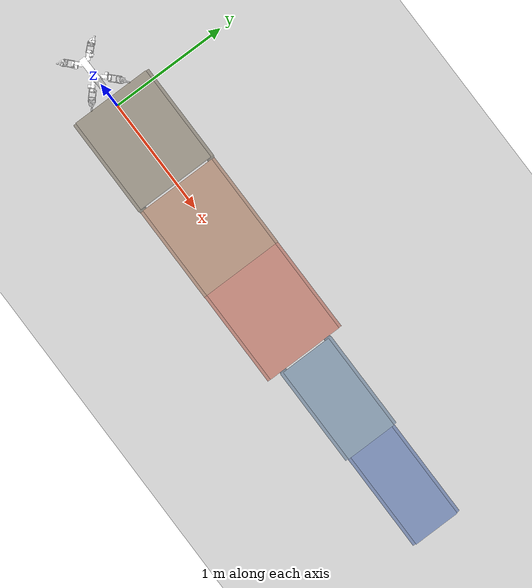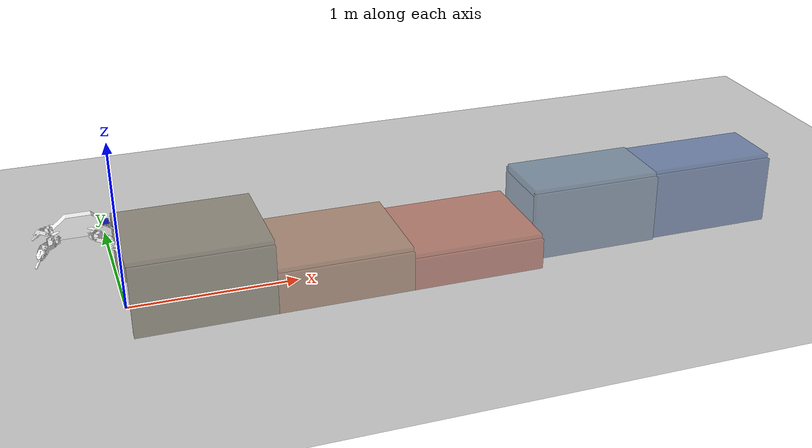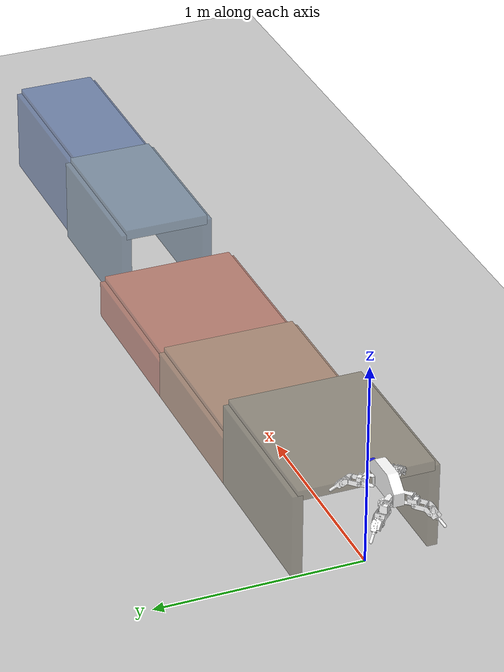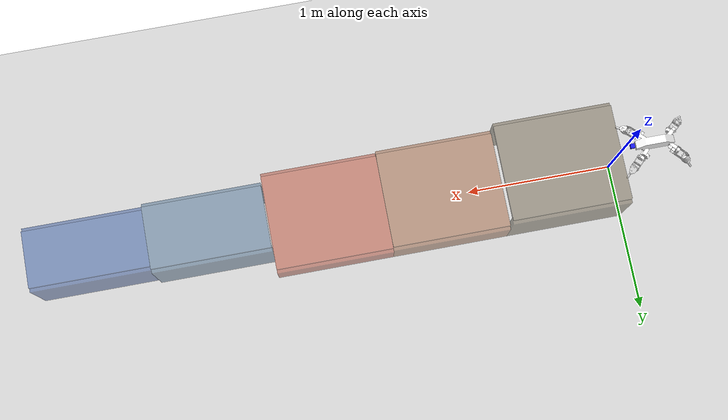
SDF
<sdf version="1.8">
 <world name="friction_world">
  <model name="ground_plane">
   <static>true</static>
   <link name="link">
    <collision name="collision">
     <geometry><plane><normal>0 0 1</normal><size>100 100</size></plane></geometry>
     <surface><friction><ode><mu>0.7</mu><mu2>0.7</mu2></ode></friction></surface>
    </collision>
    <visual name="visual">
     <geometry><plane><normal>0 0 1</normal><size>100 100</size></plane></geometry>
     <material><ambient>0.8 0.8 0.8 1</ambient><diffuse>0.8 0.8 0.8 1</diffuse></material>
    </visual>
   </link>
  </model>
  <model name="robot_with_camera">
   <pose>-0.2 0 0.5 0 0 -1.57</pose>
   <include>
    <uri>model://THex_Quadruped</uri>
    <name>THex_Quadruped</name>
    <plugin filename="gz-sim-joint-state-publisher-system" name="gz::sim::systems::JointStatePublisher"/>
   </include>
   <link name="camera_link">
    <pose>0.0 0.15 0.05 0 0 1.57</pose>
    <inertial>
     <mass>0.000001</mass>
     <inertia>
      <ixx>0.000000001</ixx>
      <ixy>0</ixy>
      <ixz>0</ixz>
      <iyy>0.000000001</iyy>
      <iyz>0</iyz>
      <izz>0.000000001</izz>
     </inertia>
    </inertial>
    <visual name="v">
     <geometry><box><size>0.03 0.03 0.02</size></box></geometry>
     <material><ambient>0.1 0.1 0.9 1</ambient><diffuse>0.1 0.1 0.9 1</diffuse></material>
    </visual>
    <sensor name="rgbd_camera" type="rgbd_camera">
     <camera>
      <horizontal_fov>1.57</horizontal_fov>
      <image><width>640</width><height>480</height></image>
      <clip><near>0.02</near><far>5.0</far></clip>
     </camera>
     <always_on>1</always_on>
     <update_rate>15</update_rate>
     <topic>rgbd_camera</topic>
    </sensor>
   </link>
   <joint name="camera_attachment" type="fixed"><parent>THex_Quadruped</parent><child>camera_link</child></joint>
  </model>
  <model name="cave_m1_normal">
   <static>true</static>
   <link name="ceiling">
    <pose>0.4 0 0.42 0 0 0</pose>
    <collision name="c"><geometry><box><size>0.8 0.65 0.05</size></box></geometry></collision>
    <visual name="v">
     <geometry><box><size>0.8 0.65 0.05</size></box></geometry>
     <material><ambient>0.4 0.35 0.25 0.5</ambient></material>
     <transparency>0.2</transparency>
    </visual>
   </link>
   <link name="left_wall">
    <pose>0.4 -0.325 0.21 0 0 0</pose>
    <collision name="c"><geometry><box><size>0.8 0.05 0.42</size></box></geometry></collision>
    <visual name="v">
     <geometry><box><size>0.8 0.05 0.42</size></box></geometry>
     <material><ambient>0.35200000000000004 0.308 0.22 0.5</ambient></material>
     <transparency>0.2</transparency>
    </visual>
   </link>
   <link name="right_wall">
    <pose>0.4 0.325 0.21 0 0 0</pose>
    <collision name="c"><geometry><box><size>0.8 0.05 0.42</size></box></geometry></collision>
    <visual name="v">
     <geometry><box><size>0.8 0.05 0.42</size></box></geometry>
     <material><ambient>0.35200000000000004 0.308 0.22 0.5</ambient></material>
     <transparency>0.2</transparency>
    </visual>
   </link>
  </model>
  <model name="cave_m2_low_moderate">
   <static>true</static>
   <link name="ceiling">
    <pose>1.2000000000000002 0 0.24 0 0 0</pose>
    <collision name="c"><geometry><box><size>0.8 0.65 0.05</size></box></geometry></collision>
    <visual name="v">
     <geometry><box><size>0.8 0.65 0.05</size></box></geometry>
     <material><ambient>0.6 0.35 0.2 0.5</ambient></material>
     <transparency>0.2</transparency>
    </visual>
   </link>
   <link name="left_wall">
    <pose>1.2000000000000002 -0.325 0.12 0 0 0</pose>
    <collision name="c"><geometry><box><size>0.8 0.05 0.24</size></box></geometry></collision>
    <visual name="v">
     <geometry><box><size>0.8 0.05 0.24</size></box></geometry>
     <material><ambient>0.528 0.308 0.17600000000000002 0.5</ambient></material>
     <transparency>0.2</transparency>
    </visual>
   </link>
   <link name="right_wall">
    <pose>1.2000000000000002 0.325 0.12 0 0 0</pose>
    <collision name="c"><geometry><box><size>0.8 0.05 0.24</size></box></geometry></collision>
    <visual name="v">
     <geometry><box><size>0.8 0.05 0.24</size></box></geometry>
     <material><ambient>0.528 0.308 0.17600000000000002 0.5</ambient></material>
     <transparency>0.2</transparency>
    </visual>
   </link>
  </model>
  <model name="cave_m3_low_extreme">
   <static>true</static>
   <link name="ceiling">
    <pose>2.0 0 0.19 0 0 0</pose>
    <collision name="c"><geometry><box><size>0.8 0.65 0.05</size></box></geometry></collision>
    <visual name="v">
     <geometry><box><size>0.8 0.65 0.05</size></box></geometry>
     <material><ambient>0.7 0.25 0.15 0.5</ambient></material>
     <transparency>0.2</transparency>
    </visual>
   </link>
   <link name="left_wall">
    <pose>2.0 -0.325 0.095 0 0 0</pose>
    <collision name="c"><geometry><box><size>0.8 0.05 0.19</size></box></geometry></collision>
    <visual name="v">
     <geometry><box><size>0.8 0.05 0.19</size></box></geometry>
     <material><ambient>0.616 0.22 0.132 0.5</ambient></material>
     <transparency>0.2</transparency>
    </visual>
   </link>
   <link name="right_wall">
    <pose>2.0 0.325 0.095 0 0 0</pose>
    <collision name="c"><geometry><box><size>0.8 0.05 0.19</size></box></geometry></collision>
    <visual name="v">
     <geometry><box><size>0.8 0.05 0.19</size></box></geometry>
     <material><ambient>0.616 0.22 0.132 0.5</ambient></material>
     <transparency>0.2</transparency>
    </visual>
   </link>
  </model>
  <model name="cave_m4_squeeze_moderate">
   <static>true</static>
   <link name="ceiling">
    <pose>2.8000000000000003 0 0.42 0 0 0</pose>
    <collision name="c"><geometry><box><size>0.8 0.42 0.05</size></box></geometry></collision>
    <visual name="v">
     <geometry><box><size>0.8 0.42 0.05</size></box></geometry>
     <material><ambient>0.25 0.4 0.55 0.5</ambient></material>
     <transparency>0.2</transparency>
    </visual>
   </link>
   <link name="left_wall">
    <pose>2.8000000000000003 -0.21 0.21 0 0 0</pose>
    <collision name="c"><geometry><box><size>0.8 0.05 0.42</size></box></geometry></collision>
    <visual name="v">
     <geometry><box><size>0.8 0.05 0.42</size></box></geometry>
     <material><ambient>0.22 0.35200000000000004 0.48400000000000004 0.5</ambient></material>
     <transparency>0.2</transparency>
    </visual>
   </link>
   <link name="right_wall">
    <pose>2.8000000000000003 0.21 0.21 0 0 0</pose>
    <collision name="c"><geometry><box><size>0.8 0.05 0.42</size></box></geometry></collision>
    <visual name="v">
     <geometry><box><size>0.8 0.05 0.42</size></box></geometry>
     <material><ambient>0.22 0.35200000000000004 0.48400000000000004 0.5</ambient></material>
     <transparency>0.2</transparency>
    </visual>
   </link>
  </model>
  <model name="cave_m5_squeeze_extreme">
   <static>true</static>
   <link name="ceiling">
    <pose>3.6 0 0.42 0 0 0</pose>
    <collision name="c"><geometry><box><size>0.8 0.38 0.05</size></box></geometry></collision>
    <visual name="v">
     <geometry><box><size>0.8 0.38 0.05</size></box></geometry>
     <material><ambient>0.15 0.3 0.6 0.5</ambient></material>
     <transparency>0.2</transparency>
    </visual>
   </link>
   <link name="left_wall">
    <pose>3.6 -0.19 0.21 0 0 0</pose>
    <collision name="c"><geometry><box><size>0.8 0.05 0.42</size></box></geometry></collision>
    <visual name="v">
     <geometry><box><size>0.8 0.05 0.42</size></box></geometry>
     <material><ambient>0.132 0.264 0.528 0.5</ambient></material>
     <transparency>0.2</transparency>
    </visual>
   </link>
   <link name="right_wall">
    <pose>3.6 0.19 0.21 0 0 0</pose>
    <collision name="c"><geometry><box><size>0.8 0.05 0.42</size></box></geometry></collision>
    <visual name="v">
     <geometry><box><size>0.8 0.05 0.42</size></box></geometry>
     <material><ambient>0.132 0.264 0.528 0.5</ambient></material>
     <transparency>0.2</transparency>
    </visual>
   </link>
  </model>
 </world>
</sdf>
